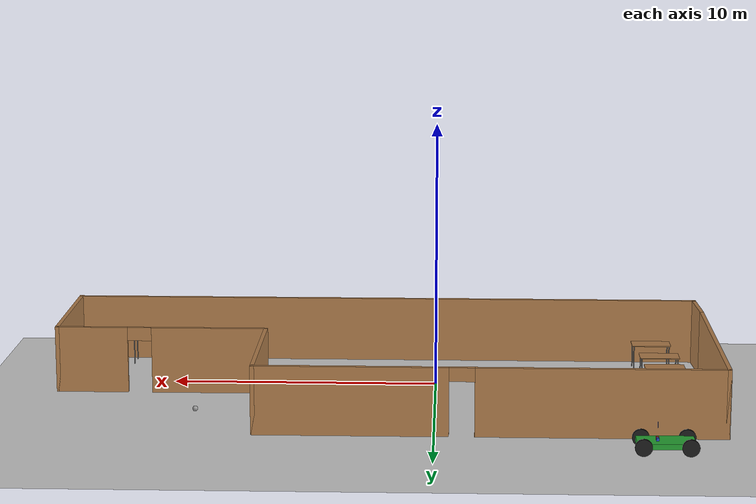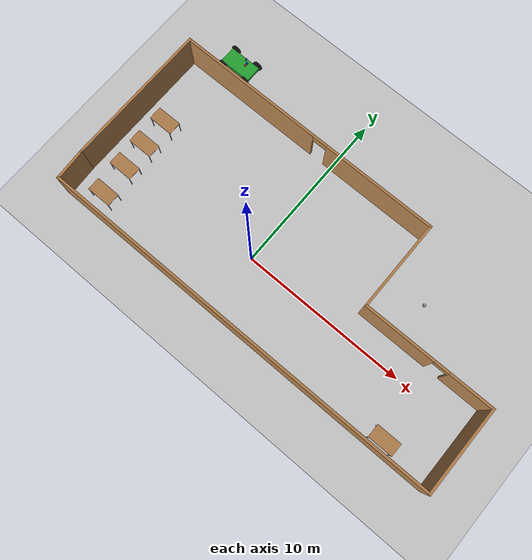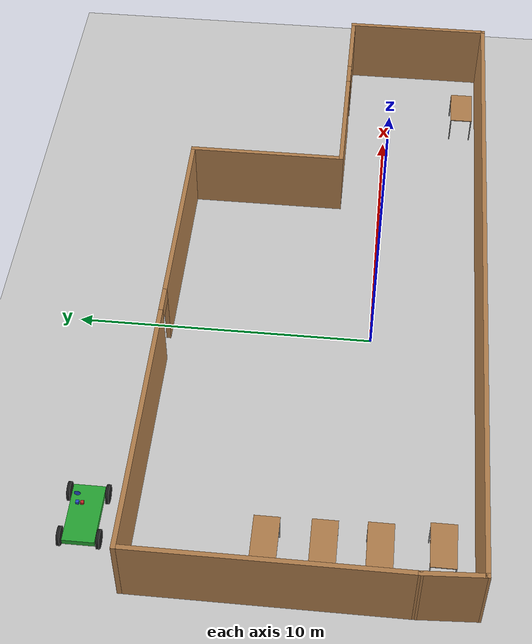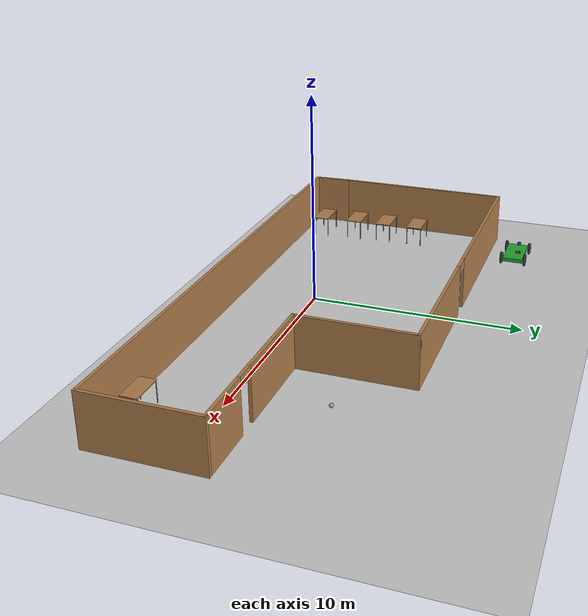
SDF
<sdf version="1.6">
 <world name="default">
  <plugin name="hello" filename="libhello.so"/>
  <light name="sun" type="directional">
   <pose>0 0 10 0 -0 0</pose>
   <diffuse>0.8 0.8 0.8 1</diffuse>
   <specular>0.2 0.2 0.2 1</specular>
   <attenuation>
    <range>1000</range>
    <constant>0.9</constant>
    <linear>0.01</linear>
    <quadratic>0.001</quadratic>
   </attenuation>
   <direction>-0.5 0.1 -0.9</direction>
  </light>
  <model name="ground_plane">
   <static>1</static>
   <link name="link">
    <collision name="collision">
     <geometry><plane><normal>0 0 1</normal><size>100 100</size></plane></geometry>
     <surface><friction><ode><mu>100</mu><mu2>50</mu2></ode></friction></surface>
    </collision>
    <visual name="visual">
     <cast_shadows>0</cast_shadows>
     <geometry><plane><normal>0 0 1</normal><size>100 100</size></plane></geometry>
     <material>
      <script><uri>file://media/materials/scripts/gazebo.material</uri><name>Gazebo/Grey</name></script>
     </material>
    </visual>
   </link>
  </model>
  <gravity>0 0 -9.8</gravity>
  <magnetic_field>6e-06 2.3e-05 -4.2e-05</magnetic_field>
  <atmosphere type="adiabatic"/>
  <physics name="default_physics" default="0" type="ode">
   <max_step_size>0.001</max_step_size>
   <real_time_factor>1</real_time_factor>
   <real_time_update_rate>1000</real_time_update_rate>
  </physics>
  <scene><ambient>0.4 0.4 0.4 1</ambient><background>0.7 0.7 0.7 1</background><shadows>1</shadows></scene>
  <spherical_coordinates>
   <surface_model>EARTH_WGS84</surface_model>
   <latitude_deg>0</latitude_deg>
   <longitude_deg>0</longitude_deg>
   <elevation>0</elevation>
   <heading_deg>0</heading_deg>
  </spherical_coordinates>
  <model name="w">
   <pose>1.98322 1.61871 0 0 -0 0</pose>
   <link name="Wall_1">
    <collision name="Wall_1_Collision">
     <geometry><box><size>8.75 0.15 2.5</size></box></geometry>
     <pose>0 0 1.25 0 -0 0</pose>
    </collision>
    <visual name="Wall_1_Visual">
     <pose>0 0 1.25 0 -0 0</pose>
     <geometry><box><size>8.75 0.15 2.5</size></box></geometry>
     <material>
      <script><uri>file://media/materials/scripts/gazebo.material</uri><name>Gazebo/Wood</name></script>
      <ambient>1 1 1 1</ambient>
     </material>
     <meta><layer>0</layer></meta>
    </visual>
    <pose>-12.223 0.926969 0 0 -0 1.5708</pose>
   </link>
   <link name="Wall_2">
    <pose>-3.92303 5.22697 0 0 -0 0</pose>
    <visual name="Wall_2_Visual_0">
     <pose>-3.92808 0 1.25 0 -0 0</pose>
     <geometry><box><size>8.89384 0.15 2.5</size></box></geometry>
     <material>
      <script><uri>file://media/materials/scripts/gazebo.material</uri><name>Gazebo/Wood</name></script>
      <ambient>1 1 1 1</ambient>
     </material>
     <meta><layer>0</layer></meta>
    </visual>
    <collision name="Wall_2_Collision_0">
     <geometry><box><size>8.89384 0.15 2.5</size></box></geometry>
     <pose>-3.92808 0 1.25 0 -0 0</pose>
    </collision>
    <visual name="Wall_2_Visual_1">
     <pose>4.89692 0 1.25 0 -0 0</pose>
     <geometry><box><size>6.95616 0.15 2.5</size></box></geometry>
     <material>
      <script><uri>file://media/materials/scripts/gazebo.material</uri><name>Gazebo/Wood</name></script>
      <ambient>1 1 1 1</ambient>
     </material>
     <meta><layer>0</layer></meta>
    </visual>
    <collision name="Wall_2_Collision_1">
     <geometry><box><size>6.95616 0.15 2.5</size></box></geometry>
     <pose>4.89692 0 1.25 0 -0 0</pose>
    </collision>
    <visual name="Wall_2_Visual_2">
     <pose>0.968839 0 2.25 0 -0 0</pose>
     <geometry><box><size>0.9 0.15 0.5</size></box></geometry>
     <material>
      <script><uri>file://media/materials/scripts/gazebo.material</uri><name>Gazebo/Wood</name></script>
      <ambient>1 1 1 1</ambient>
     </material>
     <meta><layer>0</layer></meta>
    </visual>
    <collision name="Wall_2_Collision_2">
     <geometry><box><size>0.9 0.15 0.5</size></box></geometry>
     <pose>0.968839 0 2.25 0 -0 0</pose>
    </collision>
   </link>
   <link name="Wall_3">
    <collision name="Wall_3_Collision">
     <geometry><box><size>5.5 0.15 2.5</size></box></geometry>
     <pose>0 0 1.25 0 -0 0</pose>
    </collision>
    <visual name="Wall_3_Visual">
     <pose>0 0 1.25 0 -0 0</pose>
     <geometry><box><size>5.5 0.15 2.5</size></box></geometry>
     <material>
      <script><uri>file://media/materials/scripts/gazebo.material</uri><name>Gazebo/Wood</name></script>
      <ambient>1 1 1 1</ambient>
     </material>
     <meta><layer>0</layer></meta>
    </visual>
    <pose>4.37697 2.55197 0 0 0 -1.5708</pose>
   </link>
   <link name="Wall_4">
    <pose>8.30197 -0.123031 0 0 -0 0</pose>
    <visual name="Wall_4_Visual_0">
     <pose>-1.81151 0 1.25 0 -0 0</pose>
     <geometry><box><size>4.37698 0.15 2.5</size></box></geometry>
     <material>
      <script><uri>file://media/materials/scripts/gazebo.material</uri><name>Gazebo/Wood</name></script>
      <ambient>1 1 1 1</ambient>
     </material>
     <meta><layer>0</layer></meta>
    </visual>
    <collision name="Wall_4_Collision_0">
     <geometry><box><size>4.37698 0.15 2.5</size></box></geometry>
     <pose>-1.81151 0 1.25 0 -0 0</pose>
    </collision>
    <visual name="Wall_4_Visual_1">
     <pose>2.63849 0 1.25 0 -0 0</pose>
     <geometry><box><size>2.72302 0.15 2.5</size></box></geometry>
     <material>
      <script><uri>file://media/materials/scripts/gazebo.material</uri><name>Gazebo/Wood</name></script>
      <ambient>1 1 1 1</ambient>
     </material>
     <meta><layer>0</layer></meta>
    </visual>
    <collision name="Wall_4_Collision_1">
     <geometry><box><size>2.72302 0.15 2.5</size></box></geometry>
     <pose>2.63849 0 1.25 0 -0 0</pose>
    </collision>
    <visual name="Wall_4_Visual_2">
     <pose>0.82698 0 2.25 0 -0 0</pose>
     <geometry><box><size>0.9 0.15 0.5</size></box></geometry>
     <material>
      <script><uri>file://media/materials/scripts/gazebo.material</uri><name>Gazebo/Wood</name></script>
      <ambient>1 1 1 1</ambient>
     </material>
     <meta><layer>0</layer></meta>
    </visual>
    <collision name="Wall_4_Collision_2">
     <geometry><box><size>0.9 0.15 0.5</size></box></geometry>
     <pose>0.82698 0 2.25 0 -0 0</pose>
    </collision>
   </link>
   <link name="Wall_5">
    <collision name="Wall_5_Collision">
     <geometry><box><size>5.25 0.15 2.5</size></box></geometry>
     <pose>0 0 1.25 0 -0 0</pose>
    </collision>
    <visual name="Wall_5_Visual">
     <pose>0 0 1.25 0 -0 0</pose>
     <geometry><box><size>5.25 0.15 2.5</size></box></geometry>
     <material>
      <script><uri>file://media/materials/scripts/gazebo.material</uri><name>Gazebo/Wood</name></script>
      <ambient>1 1 1 1</ambient>
     </material>
     <meta><layer>0</layer></meta>
    </visual>
    <pose>12.227 -2.67303 0 0 0 -1.5708</pose>
   </link>
   <link name="Wall_6">
    <collision name="Wall_6_Collision">
     <geometry><box><size>24.5 0.15 2.5</size></box></geometry>
     <pose>0 0 1.25 0 -0 0</pose>
    </collision>
    <visual name="Wall_6_Visual">
     <pose>0 0 1.25 0 -0 0</pose>
     <geometry><box><size>24.5 0.15 2.5</size></box></geometry>
     <material>
      <script><uri>file://media/materials/scripts/gazebo.material</uri><name>Gazebo/Wood</name></script>
      <ambient>1 1 1 1</ambient>
     </material>
     <meta><layer>0</layer></meta>
    </visual>
    <pose>0.051969 -5.22303 0 0 -0 3.14159</pose>
   </link>
   <link name="Wall_9">
    <collision name="Wall_9_Collision">
     <geometry><box><size>2.0027 0.15 2.5</size></box></geometry>
     <pose>0 0 1.25 0 -0 0</pose>
    </collision>
    <visual name="Wall_9_Visual">
     <pose>0 0 1.25 0 -0 0</pose>
     <geometry><box><size>2.0027 0.15 2.5</size></box></geometry>
     <material>
      <script><uri>file://media/materials/scripts/gazebo.material</uri><name>Gazebo/Wood</name></script>
      <ambient>1 1 1 1</ambient>
     </material>
     <meta><layer>0</layer></meta>
    </visual>
    <pose>-12.173 -4.29803 0 0 0 -1.51679</pose>
   </link>
   <static>1</static>
  </model>
  <model name="table">
   <static>1</static>
   <link name="link">
    <collision name="surface">
     <pose>0 0 1 0 -0 0</pose>
     <geometry><box><size>1.5 0.8 0.03</size></box></geometry>
     <surface><friction><ode><mu>0.6</mu><mu2>0.6</mu2></ode></friction></surface>
    </collision>
    <visual name="visual1">
     <pose>0 0 1 0 -0 0</pose>
     <geometry><box><size>1.5 0.8 0.03</size></box></geometry>
     <material>
      <script><uri>file://media/materials/scripts/gazebo.material</uri><name>Gazebo/Wood</name></script>
     </material>
    </visual>
    <collision name="front_left_leg">
     <pose>0.68 0.38 0.5 0 -0 0</pose>
     <geometry><cylinder><radius>0.02</radius><length>1</length></cylinder></geometry>
    </collision>
    <visual name="front_left_leg">
     <pose>0.68 0.38 0.5 0 -0 0</pose>
     <geometry><cylinder><radius>0.02</radius><length>1</length></cylinder></geometry>
     <material>
      <script><uri>file://media/materials/scripts/gazebo.material</uri><name>Gazebo/Grey</name></script>
     </material>
    </visual>
    <collision name="front_right_leg">
     <pose>0.68 -0.38 0.5 0 -0 0</pose>
     <geometry><cylinder><radius>0.02</radius><length>1</length></cylinder></geometry>
    </collision>
    <visual name="front_right_leg">
     <pose>0.68 -0.38 0.5 0 -0 0</pose>
     <geometry><cylinder><radius>0.02</radius><length>1</length></cylinder></geometry>
     <material>
      <script><uri>file://media/materials/scripts/gazebo.material</uri><name>Gazebo/Grey</name></script>
     </material>
    </visual>
    <collision name="back_right_leg">
     <pose>-0.68 -0.38 0.5 0 -0 0</pose>
     <geometry><cylinder><radius>0.02</radius><length>1</length></cylinder></geometry>
    </collision>
    <visual name="back_right_leg">
     <pose>-0.68 -0.38 0.5 0 -0 0</pose>
     <geometry><cylinder><radius>0.02</radius><length>1</length></cylinder></geometry>
     <material>
      <script><uri>file://media/materials/scripts/gazebo.material</uri><name>Gazebo/Grey</name></script>
     </material>
    </visual>
    <collision name="back_left_leg">
     <pose>-0.68 0.38 0.5 0 -0 0</pose>
     <geometry><cylinder><radius>0.02</radius><length>1</length></cylinder></geometry>
    </collision>
    <visual name="back_left_leg">
     <pose>-0.68 0.38 0.5 0 -0 0</pose>
     <geometry><cylinder><radius>0.02</radius><length>1</length></cylinder></geometry>
     <material>
      <script><uri>file://media/materials/scripts/gazebo.material</uri><name>Gazebo/Grey</name></script>
     </material>
    </visual>
   </link>
   <pose>-8.38699 -2.50604 0 0 -0 0</pose>
  </model>
  <model name="table_0">
   <static>1</static>
   <link name="link">
    <collision name="surface">
     <pose>0 0 1 0 -0 0</pose>
     <geometry><box><size>1.5 0.8 0.03</size></box></geometry>
     <surface><friction><ode><mu>0.6</mu><mu2>0.6</mu2></ode></friction></surface>
    </collision>
    <visual name="visual1">
     <pose>0 0 1 0 -0 0</pose>
     <geometry><box><size>1.5 0.8 0.03</size></box></geometry>
     <material>
      <script><uri>file://media/materials/scripts/gazebo.material</uri><name>Gazebo/Wood</name></script>
     </material>
    </visual>
    <collision name="front_left_leg">
     <pose>0.68 0.38 0.5 0 -0 0</pose>
     <geometry><cylinder><radius>0.02</radius><length>1</length></cylinder></geometry>
    </collision>
    <visual name="front_left_leg">
     <pose>0.68 0.38 0.5 0 -0 0</pose>
     <geometry><cylinder><radius>0.02</radius><length>1</length></cylinder></geometry>
     <material>
      <script><uri>file://media/materials/scripts/gazebo.material</uri><name>Gazebo/Grey</name></script>
     </material>
    </visual>
    <collision name="front_right_leg">
     <pose>0.68 -0.38 0.5 0 -0 0</pose>
     <geometry><cylinder><radius>0.02</radius><length>1</length></cylinder></geometry>
    </collision>
    <visual name="front_right_leg">
     <pose>0.68 -0.38 0.5 0 -0 0</pose>
     <geometry><cylinder><radius>0.02</radius><length>1</length></cylinder></geometry>
     <material>
      <script><uri>file://media/materials/scripts/gazebo.material</uri><name>Gazebo/Grey</name></script>
     </material>
    </visual>
    <collision name="back_right_leg">
     <pose>-0.68 -0.38 0.5 0 -0 0</pose>
     <geometry><cylinder><radius>0.02</radius><length>1</length></cylinder></geometry>
    </collision>
    <visual name="back_right_leg">
     <pose>-0.68 -0.38 0.5 0 -0 0</pose>
     <geometry><cylinder><radius>0.02</radius><length>1</length></cylinder></geometry>
     <material>
      <script><uri>file://media/materials/scripts/gazebo.material</uri><name>Gazebo/Grey</name></script>
     </material>
    </visual>
    <collision name="back_left_leg">
     <pose>-0.68 0.38 0.5 0 -0 0</pose>
     <geometry><cylinder><radius>0.02</radius><length>1</length></cylinder></geometry>
    </collision>
    <visual name="back_left_leg">
     <pose>-0.68 0.38 0.5 0 -0 0</pose>
     <geometry><cylinder><radius>0.02</radius><length>1</length></cylinder></geometry>
     <material>
      <script><uri>file://media/materials/scripts/gazebo.material</uri><name>Gazebo/Grey</name></script>
     </material>
    </visual>
   </link>
   <pose>-8.5425 -0.654807 0 0 -0 0</pose>
  </model>
  <model name="table_1">
   <static>1</static>
   <link name="link">
    <collision name="surface">
     <pose>0 0 1 0 -0 0</pose>
     <geometry><box><size>1.5 0.8 0.03</size></box></geometry>
     <surface><friction><ode><mu>0.6</mu><mu2>0.6</mu2></ode></friction></surface>
    </collision>
    <visual name="visual1">
     <pose>0 0 1 0 -0 0</pose>
     <geometry><box><size>1.5 0.8 0.03</size></box></geometry>
     <material>
      <script><uri>file://media/materials/scripts/gazebo.material</uri><name>Gazebo/Wood</name></script>
     </material>
    </visual>
    <collision name="front_left_leg">
     <pose>0.68 0.38 0.5 0 -0 0</pose>
     <geometry><cylinder><radius>0.02</radius><length>1</length></cylinder></geometry>
    </collision>
    <visual name="front_left_leg">
     <pose>0.68 0.38 0.5 0 -0 0</pose>
     <geometry><cylinder><radius>0.02</radius><length>1</length></cylinder></geometry>
     <material>
      <script><uri>file://media/materials/scripts/gazebo.material</uri><name>Gazebo/Grey</name></script>
     </material>
    </visual>
    <collision name="front_right_leg">
     <pose>0.68 -0.38 0.5 0 -0 0</pose>
     <geometry><cylinder><radius>0.02</radius><length>1</length></cylinder></geometry>
    </collision>
    <visual name="front_right_leg">
     <pose>0.68 -0.38 0.5 0 -0 0</pose>
     <geometry><cylinder><radius>0.02</radius><length>1</length></cylinder></geometry>
     <material>
      <script><uri>file://media/materials/scripts/gazebo.material</uri><name>Gazebo/Grey</name></script>
     </material>
    </visual>
    <collision name="back_right_leg">
     <pose>-0.68 -0.38 0.5 0 -0 0</pose>
     <geometry><cylinder><radius>0.02</radius><length>1</length></cylinder></geometry>
    </collision>
    <visual name="back_right_leg">
     <pose>-0.68 -0.38 0.5 0 -0 0</pose>
     <geometry><cylinder><radius>0.02</radius><length>1</length></cylinder></geometry>
     <material>
      <script><uri>file://media/materials/scripts/gazebo.material</uri><name>Gazebo/Grey</name></script>
     </material>
    </visual>
    <collision name="back_left_leg">
     <pose>-0.68 0.38 0.5 0 -0 0</pose>
     <geometry><cylinder><radius>0.02</radius><length>1</length></cylinder></geometry>
    </collision>
    <visual name="back_left_leg">
     <pose>-0.68 0.38 0.5 0 -0 0</pose>
     <geometry><cylinder><radius>0.02</radius><length>1</length></cylinder></geometry>
     <material>
      <script><uri>file://media/materials/scripts/gazebo.material</uri><name>Gazebo/Grey</name></script>
     </material>
    </visual>
   </link>
   <pose>-8.59707 1.00601 0 0 -0 0</pose>
  </model>
  <model name="table_2">
   <static>1</static>
   <link name="link">
    <collision name="surface">
     <pose>0 0 1 0 -0 0</pose>
     <geometry><box><size>1.5 0.8 0.03</size></box></geometry>
     <surface><friction><ode><mu>0.6</mu><mu2>0.6</mu2></ode></friction></surface>
    </collision>
    <visual name="visual1">
     <pose>0 0 1 0 -0 0</pose>
     <geometry><box><size>1.5 0.8 0.03</size></box></geometry>
     <material>
      <script><uri>file://media/materials/scripts/gazebo.material</uri><name>Gazebo/Wood</name></script>
     </material>
    </visual>
    <collision name="front_left_leg">
     <pose>0.68 0.38 0.5 0 -0 0</pose>
     <geometry><cylinder><radius>0.02</radius><length>1</length></cylinder></geometry>
    </collision>
    <visual name="front_left_leg">
     <pose>0.68 0.38 0.5 0 -0 0</pose>
     <geometry><cylinder><radius>0.02</radius><length>1</length></cylinder></geometry>
     <material>
      <script><uri>file://media/materials/scripts/gazebo.material</uri><name>Gazebo/Grey</name></script>
     </material>
    </visual>
    <collision name="front_right_leg">
     <pose>0.68 -0.38 0.5 0 -0 0</pose>
     <geometry><cylinder><radius>0.02</radius><length>1</length></cylinder></geometry>
    </collision>
    <visual name="front_right_leg">
     <pose>0.68 -0.38 0.5 0 -0 0</pose>
     <geometry><cylinder><radius>0.02</radius><length>1</length></cylinder></geometry>
     <material>
      <script><uri>file://media/materials/scripts/gazebo.material</uri><name>Gazebo/Grey</name></script>
     </material>
    </visual>
    <collision name="back_right_leg">
     <pose>-0.68 -0.38 0.5 0 -0 0</pose>
     <geometry><cylinder><radius>0.02</radius><length>1</length></cylinder></geometry>
    </collision>
    <visual name="back_right_leg">
     <pose>-0.68 -0.38 0.5 0 -0 0</pose>
     <geometry><cylinder><radius>0.02</radius><length>1</length></cylinder></geometry>
     <material>
      <script><uri>file://media/materials/scripts/gazebo.material</uri><name>Gazebo/Grey</name></script>
     </material>
    </visual>
    <collision name="back_left_leg">
     <pose>-0.68 0.38 0.5 0 -0 0</pose>
     <geometry><cylinder><radius>0.02</radius><length>1</length></cylinder></geometry>
    </collision>
    <visual name="back_left_leg">
     <pose>-0.68 0.38 0.5 0 -0 0</pose>
     <geometry><cylinder><radius>0.02</radius><length>1</length></cylinder></geometry>
     <material>
      <script><uri>file://media/materials/scripts/gazebo.material</uri><name>Gazebo/Grey</name></script>
     </material>
    </visual>
   </link>
   <pose>-8.64213 2.74155 0 0 -0 0</pose>
  </model>
  <model name="car">
   <link name="chassis">
    <pose>0 0 0.3 0 -0 0</pose>
    <collision name="collision"><geometry><box><size>2 1 0.2</size></box></geometry></collision>
    <visual name="visual">
     <geometry><box><size>2 1 0.2</size></box></geometry>
     <material>
      <script><uri>file://media/materials/scripts/gazebo.material</uri><name>Gazebo/Green</name></script>
     </material>
    </visual>
    <inertial>
     <inertia><ixx>1</ixx><ixy>0</ixy><ixz>0</ixz><iyy>1</iyy><iyz>0</iyz><izz>1</izz></inertia>
     <mass>1</mass>
    </inertial>
   </link>
   <link name="front_left_wheel">
    <pose>0.8 0.6 0.3 -0 1.5707 1.5707</pose>
    <collision name="collision">
     <geometry><cylinder><radius>0.3</radius><length>0.1</length></cylinder></geometry>
    </collision>
    <visual name="visual">
     <geometry><cylinder><radius>0.3</radius><length>0.1</length></cylinder></geometry>
     <material>
      <script><uri>file://media/materials/scripts/gazebo.material</uri><name>Gazebo/Black</name></script>
     </material>
    </visual>
    <inertial>
     <inertia><ixx>1</ixx><ixy>0</ixy><ixz>0</ixz><iyy>1</iyy><iyz>0</iyz><izz>1</izz></inertia>
     <mass>1</mass>
    </inertial>
   </link>
   <link name="front_right_wheel">
    <pose>0.8 -0.6 0.3 -0 1.5707 1.5707</pose>
    <collision name="collision">
     <geometry><cylinder><radius>0.3</radius><length>0.1</length></cylinder></geometry>
    </collision>
    <visual name="visual">
     <geometry><cylinder><radius>0.3</radius><length>0.1</length></cylinder></geometry>
     <material>
      <script><uri>file://media/materials/scripts/gazebo.material</uri><name>Gazebo/Black</name></script>
     </material>
    </visual>
    <inertial>
     <inertia><ixx>1</ixx><ixy>0</ixy><ixz>0</ixz><iyy>1</iyy><iyz>0</iyz><izz>1</izz></inertia>
     <mass>1</mass>
    </inertial>
   </link>
   <link name="back_right_wheel">
    <pose>-0.8 -0.6 0.3 -0 1.5707 1.5707</pose>
    <collision name="collision">
     <geometry><cylinder><radius>0.3</radius><length>0.1</length></cylinder></geometry>
    </collision>
    <visual name="visual">
     <geometry><cylinder><radius>0.3</radius><length>0.1</length></cylinder></geometry>
     <material>
      <script><uri>file://media/materials/scripts/gazebo.material</uri><name>Gazebo/Black</name></script>
     </material>
    </visual>
    <inertial>
     <inertia><ixx>1</ixx><ixy>0</ixy><ixz>0</ixz><iyy>1</iyy><iyz>0</iyz><izz>1</izz></inertia>
     <mass>1</mass>
    </inertial>
   </link>
   <link name="back_left_wheel">
    <pose>-0.8 0.6 0.3 -0 1.5707 1.5707</pose>
    <collision name="collision">
     <geometry><cylinder><radius>0.3</radius><length>0.1</length></cylinder></geometry>
    </collision>
    <visual name="visual">
     <geometry><cylinder><radius>0.3</radius><length>0.1</length></cylinder></geometry>
     <material>
      <script><uri>file://media/materials/scripts/gazebo.material</uri><name>Gazebo/Black</name></script>
     </material>
    </visual>
    <inertial>
     <inertia><ixx>1</ixx><ixy>0</ixy><ixz>0</ixz><iyy>1</iyy><iyz>0</iyz><izz>1</izz></inertia>
     <mass>1</mass>
    </inertial>
   </link>
   <link name="gas_pedal">
    <pose>0.3 0.1 0.5 0 -0 0</pose>
    <collision name="collision"><geometry><box><size>0.1 0.1 0.1</size></box></geometry></collision>
    <visual name="visual">
     <geometry><box><size>0.1 0.1 0.1</size></box></geometry>
     <material>
      <script><uri>file://media/materials/scripts/gazebo.material</uri><name>Gazebo/Red</name></script>
     </material>
    </visual>
    <inertial>
     <inertia><ixx>1</ixx><ixy>0</ixy><ixz>0</ixz><iyy>1</iyy><iyz>0</iyz><izz>1</izz></inertia>
     <mass>1</mass>
    </inertial>
   </link>
   <link name="brake_pedal">
    <pose>0.3 0.25 0.5 0 -0 0</pose>
    <collision name="collision"><geometry><box><size>0.1 0.1 0.1</size></box></geometry></collision>
    <visual name="visual">
     <geometry><box><size>0.1 0.1 0.1</size></box></geometry>
     <material>
      <script><uri>file://media/materials/scripts/gazebo.material</uri><name>Gazebo/Blue</name></script>
     </material>
    </visual>
    <inertial>
     <inertia><ixx>1</ixx><ixy>0</ixy><ixz>0</ixz><iyy>1</iyy><iyz>0</iyz><izz>1</izz></inertia>
     <mass>1</mass>
    </inertial>
   </link>
   <link name="steering_wheel">
    <pose>0.3 0.2 1 0 1.5707 0</pose>
    <collision name="collision">
     <geometry><cylinder><radius>0.1</radius><length>0.01</length></cylinder></geometry>
    </collision>
    <visual name="visual">
     <geometry><cylinder><radius>0.1</radius><length>0.01</length></cylinder></geometry>
     <material>
      <script><uri>file://media/materials/scripts/gazebo.material</uri><name>Gazebo/Blue</name></script>
     </material>
    </visual>
    <inertial>
     <inertia><ixx>1</ixx><ixy>0</ixy><ixz>0</ixz><iyy>1</iyy><iyz>0</iyz><izz>1</izz></inertia>
     <mass>1</mass>
    </inertial>
   </link>
   <joint name="gas_joint" type="prismatic">
    <parent>chassis</parent>
    <child>gas_pedal</child>
    <axis>
     <xyz>1 0 0</xyz>
     <limit><lower>0</lower><upper>0.2</upper></limit>
     <use_parent_model_frame>1</use_parent_model_frame>
     <dynamics><spring_reference>0</spring_reference><spring_stiffness>0</spring_stiffness></dynamics>
    </axis>
   </joint>
   <joint name="brake_joint" type="prismatic">
    <parent>chassis</parent>
    <child>brake_pedal</child>
    <axis>
     <xyz>1 0 0</xyz>
     <limit><lower>0</lower><upper>0.2</upper></limit>
     <use_parent_model_frame>1</use_parent_model_frame>
     <dynamics><spring_reference>0</spring_reference><spring_stiffness>0</spring_stiffness></dynamics>
    </axis>
   </joint>
   <joint name="steering_joint" type="revolute">
    <parent>chassis</parent>
    <child>steering_wheel</child>
    <axis>
     <xyz>1 0 0</xyz>
     <limit><lower>-7.853</lower><upper>7.853</upper></limit>
     <use_parent_model_frame>1</use_parent_model_frame>
     <dynamics><spring_reference>0</spring_reference><spring_stiffness>0</spring_stiffness></dynamics>
    </axis>
   </joint>
   <joint name="front_left_joint" type="revolute2">
    <parent>chassis</parent>
    <child>front_left_wheel</child>
    <axis>
     <xyz>0 0 1</xyz>
     <limit><lower>8.68722e-06</lower><upper>8.68722e-06</upper></limit>
     <use_parent_model_frame>1</use_parent_model_frame>
     <dynamics><spring_reference>0</spring_reference><spring_stiffness>0</spring_stiffness></dynamics>
    </axis>
    <axis2>
     <xyz>0 1 0</xyz>
     <use_parent_model_frame>1</use_parent_model_frame>
     <dynamics><spring_reference>0</spring_reference><spring_stiffness>0</spring_stiffness></dynamics>
    </axis2>
    <physics><ode><limit><cfm>0</cfm><erp>0.9</erp></limit></ode></physics>
   </joint>
   <joint name="front_right_joint" type="revolute2">
    <parent>chassis</parent>
    <child>front_right_wheel</child>
    <axis>
     <xyz>0 0 1</xyz>
     <limit><lower>8.68722e-06</lower><upper>8.68722e-06</upper></limit>
     <use_parent_model_frame>1</use_parent_model_frame>
     <dynamics><spring_reference>0</spring_reference><spring_stiffness>0</spring_stiffness></dynamics>
    </axis>
    <axis2>
     <xyz>0 1 0</xyz>
     <use_parent_model_frame>1</use_parent_model_frame>
     <dynamics><spring_reference>0</spring_reference><spring_stiffness>0</spring_stiffness></dynamics>
    </axis2>
    <physics><ode><limit><cfm>0</cfm><erp>0.9</erp></limit></ode></physics>
   </joint>
   <joint name="back_right_joint" type="revolute2">
    <parent>chassis</parent>
    <child>back_right_wheel</child>
    <axis>
     <xyz>0 0 1</xyz>
     <limit><lower>0</lower><upper>0</upper></limit>
     <use_parent_model_frame>1</use_parent_model_frame>
     <dynamics><spring_reference>0</spring_reference><spring_stiffness>0</spring_stiffness></dynamics>
    </axis>
    <axis2>
     <xyz>0 1 0</xyz>
     <use_parent_model_frame>1</use_parent_model_frame>
     <dynamics><spring_reference>0</spring_reference><spring_stiffness>0</spring_stiffness></dynamics>
    </axis2>
    <physics><ode><limit><cfm>0</cfm><erp>0.9</erp></limit></ode></physics>
   </joint>
   <joint name="back_left_joint" type="revolute2">
    <parent>chassis</parent>
    <child>back_left_wheel</child>
    <axis>
     <xyz>0 0 1</xyz>
     <limit><lower>0</lower><upper>0</upper></limit>
     <use_parent_model_frame>1</use_parent_model_frame>
     <dynamics><spring_reference>0</spring_reference><spring_stiffness>0</spring_stiffness></dynamics>
    </axis>
    <axis2>
     <xyz>0 1 0</xyz>
     <use_parent_model_frame>1</use_parent_model_frame>
     <dynamics><spring_reference>0</spring_reference><spring_stiffness>0</spring_stiffness></dynamics>
    </axis2>
    <physics><ode><limit><cfm>0</cfm><erp>0.9</erp></limit></ode></physics>
   </joint>
   <plugin name="vehicle" filename="libVehiclePlugin.so">
    <front_left>front_left_joint</front_left>
    <front_right>front_right_joint</front_right>
    <back_left>back_left_joint</back_left>
    <back_right>back_right_joint</back_right>
    <gas>gas_joint</gas>
    <brake>brake_joint</brake>
    <steering>steering_joint</steering>
    <front_power>10</front_power>
    <rear_power>10</rear_power>
    <tire_angle_range>0.5</tire_angle_range>
    <max_speed>10</max_speed>
    <aero_load>0.1</aero_load>
   </plugin>
   <pose>-7.94159 8.31816 -0.002616 -0.000273 0.000907 0.000384</pose>
  </model>
  <model name="table_3">
   <static>1</static>
   <link name="link">
    <collision name="surface">
     <pose>0 0 1 0 -0 0</pose>
     <geometry><box><size>1.5 0.8 0.03</size></box></geometry>
     <surface><friction><ode><mu>0.6</mu><mu2>0.6</mu2></ode></friction></surface>
    </collision>
    <visual name="visual1">
     <pose>0 0 1 0 -0 0</pose>
     <geometry><box><size>1.5 0.8 0.03</size></box></geometry>
     <material>
      <script><uri>file://media/materials/scripts/gazebo.material</uri><name>Gazebo/Wood</name></script>
     </material>
    </visual>
    <collision name="front_left_leg">
     <pose>0.68 0.38 0.5 0 -0 0</pose>
     <geometry><cylinder><radius>0.02</radius><length>1</length></cylinder></geometry>
    </collision>
    <visual name="front_left_leg">
     <pose>0.68 0.38 0.5 0 -0 0</pose>
     <geometry><cylinder><radius>0.02</radius><length>1</length></cylinder></geometry>
     <material>
      <script><uri>file://media/materials/scripts/gazebo.material</uri><name>Gazebo/Grey</name></script>
     </material>
    </visual>
    <collision name="front_right_leg">
     <pose>0.68 -0.38 0.5 0 -0 0</pose>
     <geometry><cylinder><radius>0.02</radius><length>1</length></cylinder></geometry>
    </collision>
    <visual name="front_right_leg">
     <pose>0.68 -0.38 0.5 0 -0 0</pose>
     <geometry><cylinder><radius>0.02</radius><length>1</length></cylinder></geometry>
     <material>
      <script><uri>file://media/materials/scripts/gazebo.material</uri><name>Gazebo/Grey</name></script>
     </material>
    </visual>
    <collision name="back_right_leg">
     <pose>-0.68 -0.38 0.5 0 -0 0</pose>
     <geometry><cylinder><radius>0.02</radius><length>1</length></cylinder></geometry>
    </collision>
    <visual name="back_right_leg">
     <pose>-0.68 -0.38 0.5 0 -0 0</pose>
     <geometry><cylinder><radius>0.02</radius><length>1</length></cylinder></geometry>
     <material>
      <script><uri>file://media/materials/scripts/gazebo.material</uri><name>Gazebo/Grey</name></script>
     </material>
    </visual>
    <collision name="back_left_leg">
     <pose>-0.68 0.38 0.5 0 -0 0</pose>
     <geometry><cylinder><radius>0.02</radius><length>1</length></cylinder></geometry>
    </collision>
    <visual name="back_left_leg">
     <pose>-0.68 0.38 0.5 0 -0 0</pose>
     <geometry><cylinder><radius>0.02</radius><length>1</length></cylinder></geometry>
     <material>
      <script><uri>file://media/materials/scripts/gazebo.material</uri><name>Gazebo/Grey</name></script>
     </material>
    </visual>
   </link>
   <pose>11.2847 -2.9242 0 0 -0 0</pose>
  </model>
  <model name="myball">
   <link name="link_0">
    <inertial>
     <mass>1</mass>
     <inertia><ixx>0.1</ixx><ixy>0</ixy><ixz>0</ixz><iyy>0.1</iyy><iyz>0</iyz><izz>0.1</izz></inertia>
    </inertial>
    <visual name="visual">
     <geometry><sphere><radius>0.1</radius></sphere></geometry>
     <material>
      <lighting>1</lighting>
      <script><uri>file://media/materials/scripts/gazebo.material</uri><name>Gazebo/Grey</name></script>
      <shader type="pixel"><normal_map>__default__</normal_map></shader>
      <ambient>1 1 1 1</ambient>
      <diffuse>1 1 1 1</diffuse>
      <specular>1 1 1 1</specular>
      <emissive>0 0 0 1</emissive>
     </material>
    </visual>
    <collision name="collision">
     <geometry><sphere><radius>0.1</radius></sphere></geometry>
     <surface>
      <friction>
       <ode><mu>1</mu><mu2>1</mu2><fdir1>0 0 0</fdir1><slip1>0</slip1><slip2>0</slip2></ode>
       <torsional>
        <coefficient>1</coefficient>
        <patch_radius>0</patch_radius>
        <surface_radius>0</surface_radius>
        <use_patch_radius>1</use_patch_radius>
        <ode><slip>0</slip></ode>
       </torsional>
      </friction>
      <bounce><restitution_coefficient>0</restitution_coefficient><threshold>1e+06</threshold></bounce>
      <contact>
       <collide_without_contact>0</collide_without_contact>
       <collide_without_contact_bitmask>1</collide_without_contact_bitmask>
       <collide_bitmask>1</collide_bitmask>
       <ode>
        <soft_cfm>0</soft_cfm>
        <soft_erp>0.2</soft_erp>
        <kp>1e+13</kp>
        <kd>1</kd>
        <max_vel>0.01</max_vel>
        <min_depth>0</min_depth>
       </ode>
       <bullet>
        <split_impulse>1</split_impulse>
        <split_impulse_penetration_threshold>-0.01</split_impulse_penetration_threshold>
        <soft_cfm>0</soft_cfm>
        <soft_erp>0.2</soft_erp>
        <kp>1e+13</kp>
        <kd>1</kd>
       </bullet>
      </contact>
     </surface>
    </collision>
   </link>
   <static>0</static>
   <pose>8.73464 4.02509 0.1 0 -0 0</pose>
  </model>
 </world>
</sdf>
